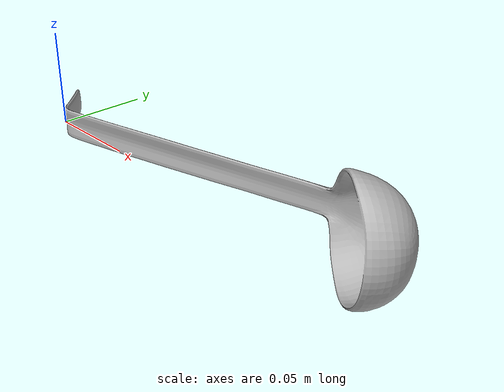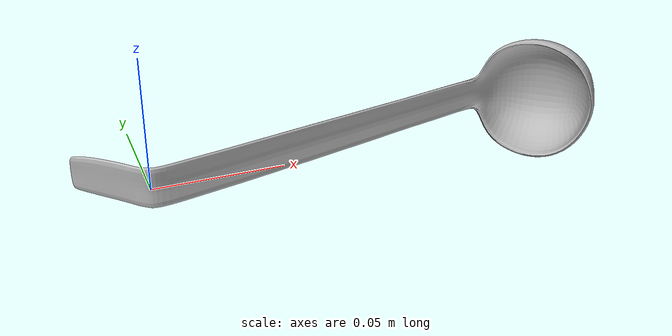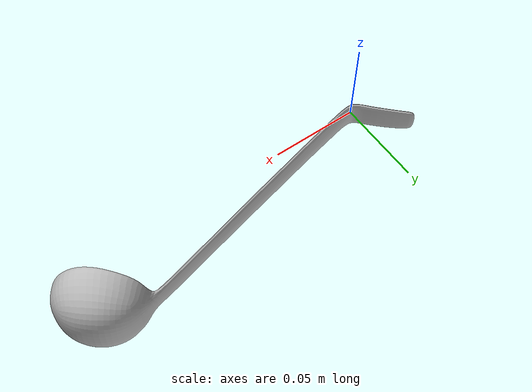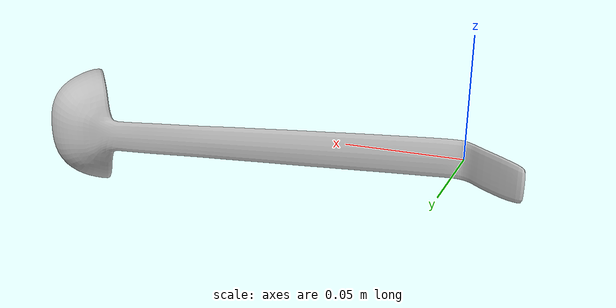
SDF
<?xml version="1.0"?>
<sdf version="1.11">
  <model name="robosub25_ladle">
    <link name="ladle">
      <pose>0 0 0 0 0 0</pose>
      <mass value="0.5"/>
      <visual name="ladle_vis">
        <pose>0 0 0 0 0 0</pose>
        <geometry>
          <mesh>
            <uri>model://robosub25/ladle/ladle.obj</uri>
          </mesh>
        </geometry>
      </visual>
      <collision name="ladle_collision">
        <pose>0 0 0 0 0 0</pose>
        <geometry>
          <box>
            <size>0.221 0.0427 0.0543</size>
          </box>
        </geometry>
      </collision>
    </link>

    <plugin
      filename="gz-sim-hydrodynamics-system"
      name="gz::sim::systems::Hydrodynamics">
      <link_name>ladle</link_name>
      <enable_coriolis>false</enable_coriolis>
      <water_density>1025.0</water_density>
    </plugin>
  </model>
</sdf>
